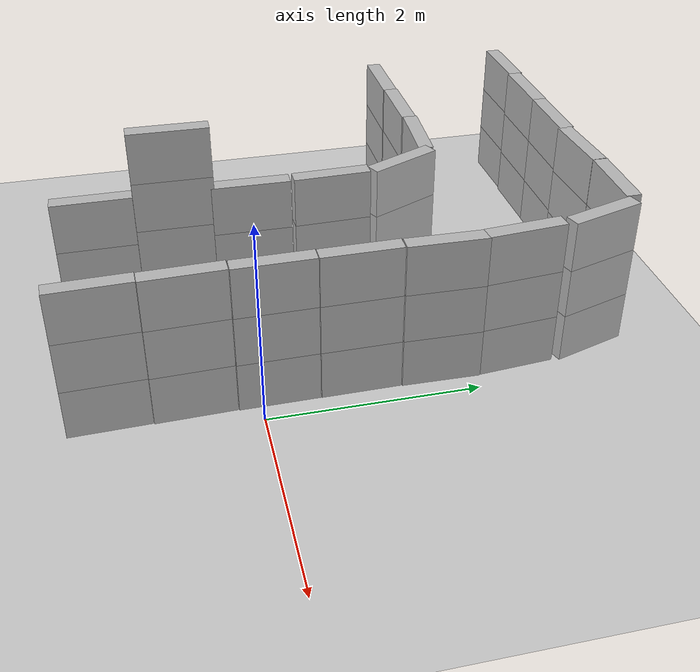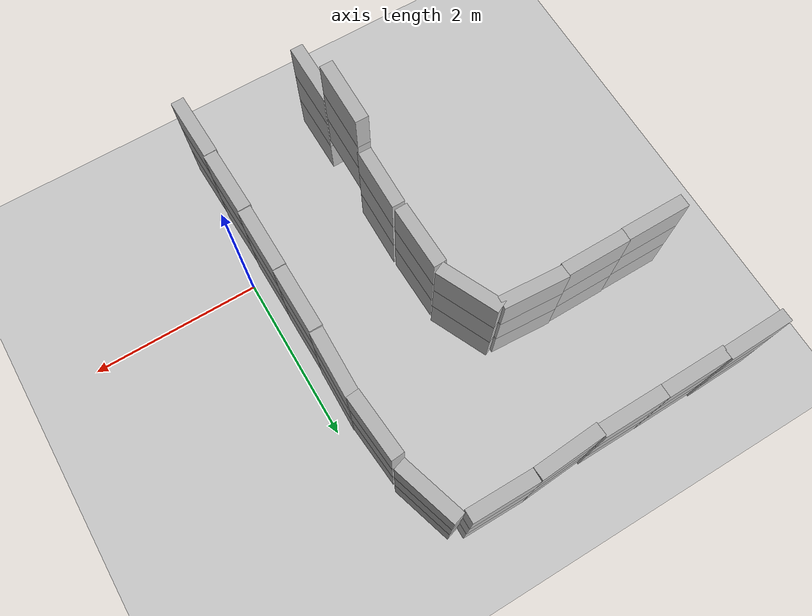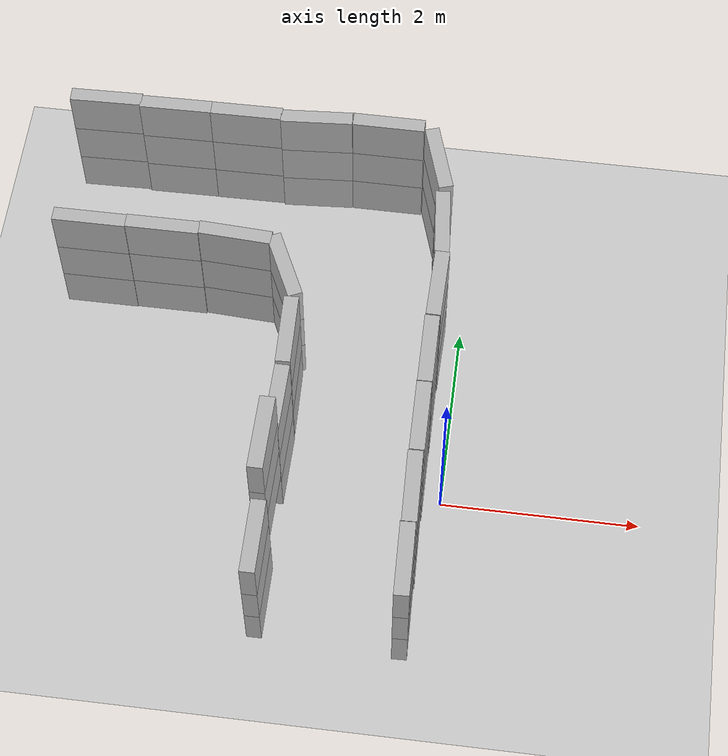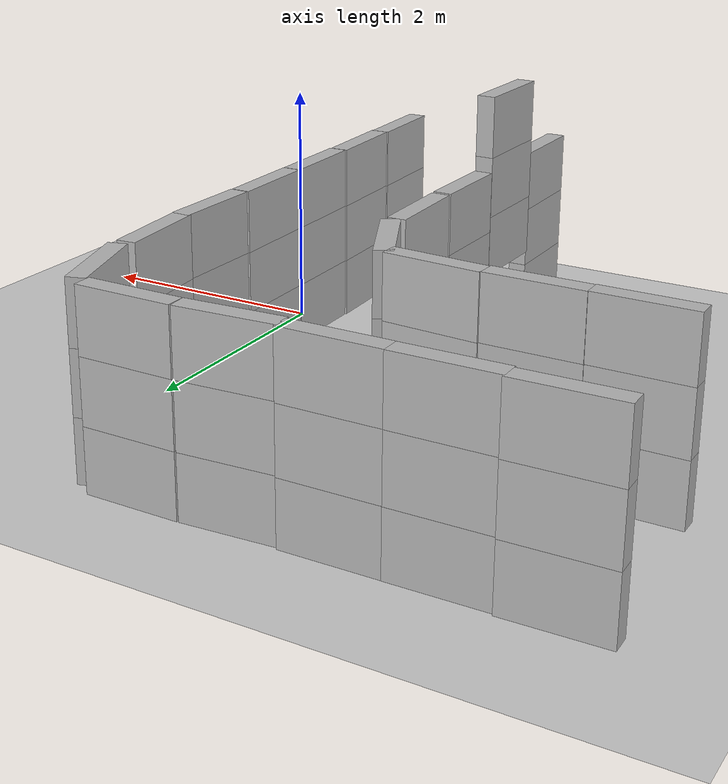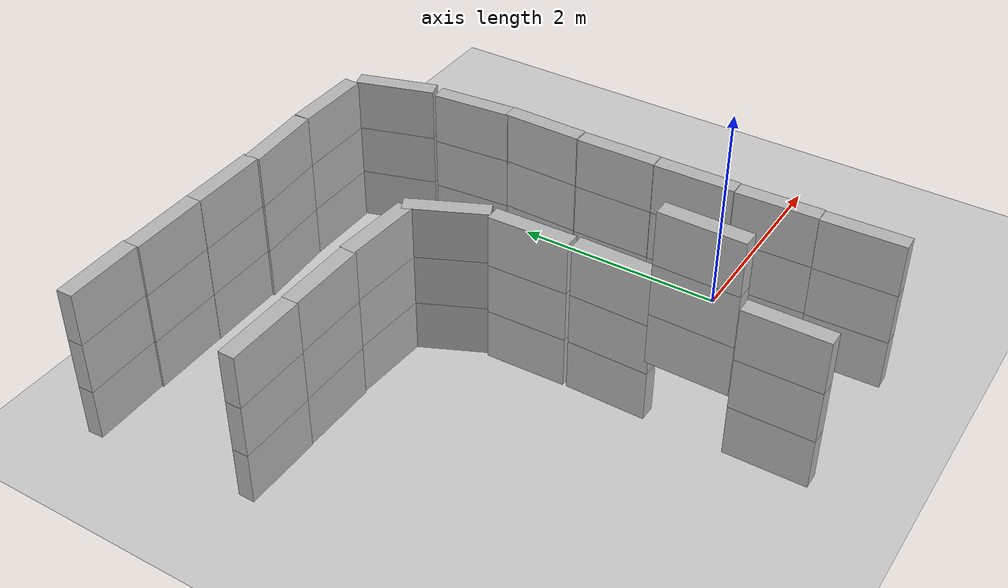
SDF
<sdf version="1.6">
 <world name="default">
  <light name="sun" type="directional">
   <pose>0 0 10 0 -0 0</pose>
   <diffuse>0.8 0.8 0.8 1</diffuse>
   <specular>0.2 0.2 0.2 1</specular>
   <attenuation>
    <range>1000</range>
    <constant>0.9</constant>
    <linear>0.01</linear>
    <quadratic>0.001</quadratic>
   </attenuation>
   <direction>-0.5 0.1 -0.9</direction>
  </light>
  <model name="ground_plane">
   <static>1</static>
   <link name="link">
    <collision name="collision">
     <geometry><plane><normal>0 0 1</normal><size>100 100</size></plane></geometry>
     <surface>
      <contact><collide_bitmask>65535</collide_bitmask></contact>
      <friction><ode><mu>100</mu><mu2>50</mu2></ode></friction>
     </surface>
    </collision>
    <visual name="visual">
     <cast_shadows>0</cast_shadows>
     <geometry><plane><normal>0 0 1</normal><size>100 100</size></plane></geometry>
     <material>
      <script><uri>file://media/materials/scripts/gazebo.material</uri><name>Gazebo/Grey</name></script>
     </material>
    </visual>
   </link>
  </model>
  <gravity>0 0 -9.8</gravity>
  <magnetic_field>6e-06 2.3e-05 -4.2e-05</magnetic_field>
  <atmosphere type="adiabatic"/>
  <physics name="default_physics" default="0" type="ode">
   <max_step_size>0.001</max_step_size>
   <real_time_factor>1</real_time_factor>
   <real_time_update_rate>1000</real_time_update_rate>
  </physics>
  <scene><ambient>0.4 0.4 0.4 1</ambient><background>0.7 0.7 0.7 1</background><shadows>1</shadows></scene>
  <audio><device>default</device></audio>
  <spherical_coordinates>
   <surface_model>EARTH_WGS84</surface_model>
   <latitude_deg>0</latitude_deg>
   <longitude_deg>0</longitude_deg>
   <elevation>0</elevation>
   <heading_deg>0</heading_deg>
  </spherical_coordinates>
  <model name="boxes_1">
   <pose>-1.65191 -1.28239 0 0 -0 0.002537</pose>
   <static>1</static>
   <link name="link_0">
    <collision name="collision_0">
     <pose>0 0 1.25 0 -0 1.5708</pose>
     <geometry><box><size>0.75 0.15 0.5</size></box></geometry>
    </collision>
    <visual name="visual_0">
     <pose>0 0 1.25 0 -0 1.5708</pose>
     <geometry><mesh><uri>model://boxes_1/meshes/blue_circle_border.dae</uri></mesh></geometry>
    </visual>
   </link>
   <link name="link_1">
    <collision name="collision_1">
     <pose>0 0 0.75 0 -0 1.5708</pose>
     <geometry><box><size>0.75 0.15 0.5</size></box></geometry>
    </collision>
    <visual name="visual_1">
     <pose>0 0 0.75 0 -0 1.5708</pose>
     <geometry><mesh><uri>model://boxes_1/meshes/red_circle_border.dae</uri></mesh></geometry>
    </visual>
   </link>
   <link name="link_2">
    <collision name="collision_2">
     <pose>0 0 0.25 0 -0 1.5708</pose>
     <geometry><box><size>0.75 0.15 0.5</size></box></geometry>
    </collision>
    <visual name="visual_2">
     <pose>0 0 0.25 0 -0 1.5708</pose>
     <geometry><mesh><uri>model://boxes_1/meshes/green_circle_border.dae</uri></mesh></geometry>
    </visual>
   </link>
  </model>
  <model name="boxes_2">
   <pose>-1.65884 -0.530511 0.624703 0 0 -0.01292</pose>
   <static>1</static>
   <link name="link_0">
    <collision name="collision_0">
     <pose>0 0 0.25 0 -0 1.5708</pose>
     <geometry><box><size>0.75 0.15 0.5</size></box></geometry>
    </collision>
    <visual name="visual_0">
     <pose>0 0 0.25 0 -0 1.5708</pose>
     <geometry><mesh><uri>model://boxes_2/meshes/blue_circle_border.dae</uri></mesh></geometry>
    </visual>
   </link>
   <link name="link_1">
    <collision name="collision_1">
     <pose>0 0 1.25 0 -0 1.5708</pose>
     <geometry><box><size>0.75 0.15 0.5</size></box></geometry>
    </collision>
    <visual name="visual_1">
     <pose>0 0 1.25 0 -0 1.5708</pose>
     <geometry><mesh><uri>model://boxes_2/meshes/red_circle_border.dae</uri></mesh></geometry>
    </visual>
   </link>
   <link name="link_2">
    <collision name="collision_2">
     <pose>0 0 0.75 0 -0 1.5708</pose>
     <geometry><box><size>0.75 0.15 0.5</size></box></geometry>
    </collision>
    <visual name="visual_2">
     <pose>0 0 0.75 0 -0 1.5708</pose>
     <geometry><mesh><uri>model://boxes_2/meshes/green_circle_border.dae</uri></mesh></geometry>
    </visual>
   </link>
  </model>
  <model name="boxes_3">
   <pose>-1.64812 0.189342 0 0 0 -0.013649</pose>
   <static>1</static>
   <link name="link_0">
    <collision name="collision_0">
     <pose>0 0 0.75 0 -0 1.5708</pose>
     <geometry><box><size>0.75 0.15 0.5</size></box></geometry>
    </collision>
    <visual name="visual_0">
     <pose>0 0 0.75 0 -0 1.5708</pose>
     <geometry><mesh><uri>model://boxes_3/meshes/blue_circle_border.dae</uri></mesh></geometry>
    </visual>
   </link>
   <link name="link_1">
    <collision name="collision_1">
     <pose>0 0 0.25 0 -0 1.5708</pose>
     <geometry><box><size>0.75 0.15 0.5</size></box></geometry>
    </collision>
    <visual name="visual_1">
     <pose>0 0 0.25 0 -0 1.5708</pose>
     <geometry><mesh><uri>model://boxes_3/meshes/red_circle_border.dae</uri></mesh></geometry>
    </visual>
   </link>
   <link name="link_2">
    <collision name="collision_2">
     <pose>0 0 1.25 0 -0 1.5708</pose>
     <geometry><box><size>0.75 0.15 0.5</size></box></geometry>
    </collision>
    <visual name="visual_2">
     <pose>0 0 1.25 0 -0 1.5708</pose>
     <geometry><mesh><uri>model://boxes_3/meshes/green_circle_border.dae</uri></mesh></geometry>
    </visual>
   </link>
  </model>
  <model name="boxes_1_0">
   <pose>-1.65694 0.972636 0 0 -0 0.026188</pose>
   <static>1</static>
   <link name="link_0">
    <collision name="collision_0">
     <pose>0 0 1.25 0 -0 1.5708</pose>
     <geometry><box><size>0.75 0.15 0.5</size></box></geometry>
    </collision>
    <visual name="visual_0">
     <pose>0 0 1.25 0 -0 1.5708</pose>
     <geometry><mesh><uri>model://boxes_1/meshes/blue_circle_border.dae</uri></mesh></geometry>
    </visual>
   </link>
   <link name="link_1">
    <collision name="collision_1">
     <pose>0 0 0.75 0 -0 1.5708</pose>
     <geometry><box><size>0.75 0.15 0.5</size></box></geometry>
    </collision>
    <visual name="visual_1">
     <pose>0 0 0.75 0 -0 1.5708</pose>
     <geometry><mesh><uri>model://boxes_1/meshes/red_circle_border.dae</uri></mesh></geometry>
    </visual>
   </link>
   <link name="link_2">
    <collision name="collision_2">
     <pose>0 0 0.25 0 -0 1.5708</pose>
     <geometry><box><size>0.75 0.15 0.5</size></box></geometry>
    </collision>
    <visual name="visual_2">
     <pose>0 0 0.25 0 -0 1.5708</pose>
     <geometry><mesh><uri>model://boxes_1/meshes/green_circle_border.dae</uri></mesh></geometry>
    </visual>
   </link>
  </model>
  <model name="boxes_2_0">
   <pose>-1.79252 1.71316 0 0 -0 0.436057</pose>
   <static>1</static>
   <link name="link_0">
    <collision name="collision_0">
     <pose>0 0 0.25 0 -0 1.5708</pose>
     <geometry><box><size>0.75 0.15 0.5</size></box></geometry>
    </collision>
    <visual name="visual_0">
     <pose>0 0 0.25 0 -0 1.5708</pose>
     <geometry><mesh><uri>model://boxes_2/meshes/blue_circle_border.dae</uri></mesh></geometry>
    </visual>
   </link>
   <link name="link_1">
    <collision name="collision_1">
     <pose>0 0 1.25 0 -0 1.5708</pose>
     <geometry><box><size>0.75 0.15 0.5</size></box></geometry>
    </collision>
    <visual name="visual_1">
     <pose>0 0 1.25 0 -0 1.5708</pose>
     <geometry><mesh><uri>model://boxes_2/meshes/red_circle_border.dae</uri></mesh></geometry>
    </visual>
   </link>
   <link name="link_2">
    <collision name="collision_2">
     <pose>0 0 0.75 0 -0 1.5708</pose>
     <geometry><box><size>0.75 0.15 0.5</size></box></geometry>
    </collision>
    <visual name="visual_2">
     <pose>0 0 0.75 0 -0 1.5708</pose>
     <geometry><mesh><uri>model://boxes_2/meshes/green_circle_border.dae</uri></mesh></geometry>
    </visual>
   </link>
  </model>
  <model name="boxes_3_0">
   <pose>-2.34043 2.03381 0 0 -0 1.5116</pose>
   <static>1</static>
   <link name="link_0">
    <collision name="collision_0">
     <pose>0 0 0.75 0 -0 1.5708</pose>
     <geometry><box><size>0.75 0.15 0.5</size></box></geometry>
    </collision>
    <visual name="visual_0">
     <pose>0 0 0.75 0 -0 1.5708</pose>
     <geometry><mesh><uri>model://boxes_3/meshes/blue_circle_border.dae</uri></mesh></geometry>
    </visual>
   </link>
   <link name="link_1">
    <collision name="collision_1">
     <pose>0 0 0.25 0 -0 1.5708</pose>
     <geometry><box><size>0.75 0.15 0.5</size></box></geometry>
    </collision>
    <visual name="visual_1">
     <pose>0 0 0.25 0 -0 1.5708</pose>
     <geometry><mesh><uri>model://boxes_3/meshes/red_circle_border.dae</uri></mesh></geometry>
    </visual>
   </link>
   <link name="link_2">
    <collision name="collision_2">
     <pose>0 0 1.25 0 -0 1.5708</pose>
     <geometry><box><size>0.75 0.15 0.5</size></box></geometry>
    </collision>
    <visual name="visual_2">
     <pose>0 0 1.25 0 -0 1.5708</pose>
     <geometry><mesh><uri>model://boxes_3/meshes/green_circle_border.dae</uri></mesh></geometry>
    </visual>
   </link>
  </model>
  <model name="boxes_1_1">
   <pose>-3.08322 2.0433 0 0 -0 1.5708</pose>
   <static>1</static>
   <link name="link_0">
    <collision name="collision_0">
     <pose>0 0 1.25 0 -0 1.5708</pose>
     <geometry><box><size>0.75 0.15 0.5</size></box></geometry>
    </collision>
    <visual name="visual_0">
     <pose>0 0 1.25 0 -0 1.5708</pose>
     <geometry><mesh><uri>model://boxes_1/meshes/blue_circle_border.dae</uri></mesh></geometry>
    </visual>
   </link>
   <link name="link_1">
    <collision name="collision_1">
     <pose>0 0 0.75 0 -0 1.5708</pose>
     <geometry><box><size>0.75 0.15 0.5</size></box></geometry>
    </collision>
    <visual name="visual_1">
     <pose>0 0 0.75 0 -0 1.5708</pose>
     <geometry><mesh><uri>model://boxes_1/meshes/red_circle_border.dae</uri></mesh></geometry>
    </visual>
   </link>
   <link name="link_2">
    <collision name="collision_2">
     <pose>0 0 0.25 0 -0 1.5708</pose>
     <geometry><box><size>0.75 0.15 0.5</size></box></geometry>
    </collision>
    <visual name="visual_2">
     <pose>0 0 0.25 0 -0 1.5708</pose>
     <geometry><mesh><uri>model://boxes_1/meshes/green_circle_border.dae</uri></mesh></geometry>
    </visual>
   </link>
  </model>
  <model name="boxes_2_1">
   <pose>-3.82977 2.03662 0 0 -0 1.5708</pose>
   <static>1</static>
   <link name="link_0">
    <collision name="collision_0">
     <pose>0 0 0.25 0 -0 1.5708</pose>
     <geometry><box><size>0.75 0.15 0.5</size></box></geometry>
    </collision>
    <visual name="visual_0">
     <pose>0 0 0.25 0 -0 1.5708</pose>
     <geometry><mesh><uri>model://boxes_2/meshes/blue_circle_border.dae</uri></mesh></geometry>
    </visual>
   </link>
   <link name="link_1">
    <collision name="collision_1">
     <pose>0 0 1.25 0 -0 1.5708</pose>
     <geometry><box><size>0.75 0.15 0.5</size></box></geometry>
    </collision>
    <visual name="visual_1">
     <pose>0 0 1.25 0 -0 1.5708</pose>
     <geometry><mesh><uri>model://boxes_2/meshes/red_circle_border.dae</uri></mesh></geometry>
    </visual>
   </link>
   <link name="link_2">
    <collision name="collision_2">
     <pose>0 0 0.75 0 -0 1.5708</pose>
     <geometry><box><size>0.75 0.15 0.5</size></box></geometry>
    </collision>
    <visual name="visual_2">
     <pose>0 0 0.75 0 -0 1.5708</pose>
     <geometry><mesh><uri>model://boxes_2/meshes/green_circle_border.dae</uri></mesh></geometry>
    </visual>
   </link>
  </model>
  <model name="boxes_1_2">
   <pose>-0.234445 -1.33841 0 0 -0 -3.11131</pose>
   <static>1</static>
   <link name="link_0">
    <collision name="collision_0">
     <pose>0 0 1.25 0 -0 1.5708</pose>
     <geometry><box><size>0.75 0.15 0.5</size></box></geometry>
    </collision>
    <visual name="visual_0">
     <pose>0 0 1.25 0 -0 1.5708</pose>
     <geometry><mesh><uri>model://boxes_1/meshes/blue_circle_border.dae</uri></mesh></geometry>
    </visual>
   </link>
   <link name="link_1">
    <collision name="collision_1">
     <pose>0 0 0.75 0 -0 1.5708</pose>
     <geometry><box><size>0.75 0.15 0.5</size></box></geometry>
    </collision>
    <visual name="visual_1">
     <pose>0 0 0.75 0 -0 1.5708</pose>
     <geometry><mesh><uri>model://boxes_1/meshes/red_circle_border.dae</uri></mesh></geometry>
    </visual>
   </link>
   <link name="link_2">
    <collision name="collision_2">
     <pose>0 0 0.25 0 -0 1.5708</pose>
     <geometry><box><size>0.75 0.15 0.5</size></box></geometry>
    </collision>
    <visual name="visual_2">
     <pose>0 0 0.25 0 -0 1.5708</pose>
     <geometry><mesh><uri>model://boxes_1/meshes/green_circle_border.dae</uri></mesh></geometry>
    </visual>
   </link>
  </model>
  <model name="boxes_2_2">
   <pose>-0.24783 -0.584587 0 0 -0 -3.11151</pose>
   <static>1</static>
   <link name="link_0">
    <collision name="collision_0">
     <pose>0 0 0.25 0 -0 1.5708</pose>
     <geometry><box><size>0.75 0.15 0.5</size></box></geometry>
    </collision>
    <visual name="visual_0">
     <pose>0 0 0.25 0 -0 1.5708</pose>
     <geometry><mesh><uri>model://boxes_2/meshes/blue_circle_border.dae</uri></mesh></geometry>
    </visual>
   </link>
   <link name="link_1">
    <collision name="collision_1">
     <pose>0 0 1.25 0 -0 1.5708</pose>
     <geometry><box><size>0.75 0.15 0.5</size></box></geometry>
    </collision>
    <visual name="visual_1">
     <pose>0 0 1.25 0 -0 1.5708</pose>
     <geometry><mesh><uri>model://boxes_2/meshes/red_circle_border.dae</uri></mesh></geometry>
    </visual>
   </link>
   <link name="link_2">
    <collision name="collision_2">
     <pose>0 0 0.75 0 -0 1.5708</pose>
     <geometry><box><size>0.75 0.15 0.5</size></box></geometry>
    </collision>
    <visual name="visual_2">
     <pose>0 0 0.75 0 -0 1.5708</pose>
     <geometry><mesh><uri>model://boxes_2/meshes/green_circle_border.dae</uri></mesh></geometry>
    </visual>
   </link>
  </model>
  <model name="boxes_3_1">
   <pose>-0.254814 0.172431 0 0 -0 -3.13027</pose>
   <static>1</static>
   <link name="link_0">
    <collision name="collision_0">
     <pose>0 0 0.75 0 -0 1.5708</pose>
     <geometry><box><size>0.75 0.15 0.5</size></box></geometry>
    </collision>
    <visual name="visual_0">
     <pose>0 0 0.75 0 -0 1.5708</pose>
     <geometry><mesh><uri>model://boxes_3/meshes/blue_circle_border.dae</uri></mesh></geometry>
    </visual>
   </link>
   <link name="link_1">
    <collision name="collision_1">
     <pose>0 0 0.25 0 -0 1.5708</pose>
     <geometry><box><size>0.75 0.15 0.5</size></box></geometry>
    </collision>
    <visual name="visual_1">
     <pose>0 0 0.25 0 -0 1.5708</pose>
     <geometry><mesh><uri>model://boxes_3/meshes/red_circle_border.dae</uri></mesh></geometry>
    </visual>
   </link>
   <link name="link_2">
    <collision name="collision_2">
     <pose>0 0 1.25 0 -0 1.5708</pose>
     <geometry><box><size>0.75 0.15 0.5</size></box></geometry>
    </collision>
    <visual name="visual_2">
     <pose>0 0 1.25 0 -0 1.5708</pose>
     <geometry><mesh><uri>model://boxes_3/meshes/green_circle_border.dae</uri></mesh></geometry>
    </visual>
   </link>
  </model>
  <model name="boxes_1_3">
   <pose>-0.25912 0.927731 0 0 -0 -3.13272</pose>
   <static>1</static>
   <link name="link_0">
    <collision name="collision_0">
     <pose>0 0 1.25 0 -0 1.5708</pose>
     <geometry><box><size>0.75 0.15 0.5</size></box></geometry>
    </collision>
    <visual name="visual_0">
     <pose>0 0 1.25 0 -0 1.5708</pose>
     <geometry><mesh><uri>model://boxes_1/meshes/blue_circle_border.dae</uri></mesh></geometry>
    </visual>
   </link>
   <link name="link_1">
    <collision name="collision_1">
     <pose>0 0 0.75 0 -0 1.5708</pose>
     <geometry><box><size>0.75 0.15 0.5</size></box></geometry>
    </collision>
    <visual name="visual_1">
     <pose>0 0 0.75 0 -0 1.5708</pose>
     <geometry><mesh><uri>model://boxes_1/meshes/red_circle_border.dae</uri></mesh></geometry>
    </visual>
   </link>
   <link name="link_2">
    <collision name="collision_2">
     <pose>0 0 0.25 0 -0 1.5708</pose>
     <geometry><box><size>0.75 0.15 0.5</size></box></geometry>
    </collision>
    <visual name="visual_2">
     <pose>0 0 0.25 0 -0 1.5708</pose>
     <geometry><mesh><uri>model://boxes_1/meshes/green_circle_border.dae</uri></mesh></geometry>
    </visual>
   </link>
  </model>
  <model name="boxes_2_3">
   <pose>-0.248889 1.6871 0 0 -0 3.12304</pose>
   <static>1</static>
   <link name="link_0">
    <collision name="collision_0">
     <pose>0 0 0.25 0 -0 1.5708</pose>
     <geometry><box><size>0.75 0.15 0.5</size></box></geometry>
    </collision>
    <visual name="visual_0">
     <pose>0 0 0.25 0 -0 1.5708</pose>
     <geometry><mesh><uri>model://boxes_2/meshes/blue_circle_border.dae</uri></mesh></geometry>
    </visual>
   </link>
   <link name="link_1">
    <collision name="collision_1">
     <pose>0 0 1.25 0 -0 1.5708</pose>
     <geometry><box><size>0.75 0.15 0.5</size></box></geometry>
    </collision>
    <visual name="visual_1">
     <pose>0 0 1.25 0 -0 1.5708</pose>
     <geometry><mesh><uri>model://boxes_2/meshes/red_circle_border.dae</uri></mesh></geometry>
    </visual>
   </link>
   <link name="link_2">
    <collision name="collision_2">
     <pose>0 0 0.75 0 -0 1.5708</pose>
     <geometry><box><size>0.75 0.15 0.5</size></box></geometry>
    </collision>
    <visual name="visual_2">
     <pose>0 0 0.75 0 -0 1.5708</pose>
     <geometry><mesh><uri>model://boxes_2/meshes/green_circle_border.dae</uri></mesh></geometry>
    </visual>
   </link>
  </model>
  <model name="boxes_3_2">
   <pose>-0.280245 2.42055 0 0 -0 -3.05467</pose>
   <static>1</static>
   <link name="link_0">
    <collision name="collision_0">
     <pose>0 0 0.75 0 -0 1.5708</pose>
     <geometry><box><size>0.75 0.15 0.5</size></box></geometry>
    </collision>
    <visual name="visual_0">
     <pose>0 0 0.75 0 -0 1.5708</pose>
     <geometry><mesh><uri>model://boxes_3/meshes/blue_circle_border.dae</uri></mesh></geometry>
    </visual>
   </link>
   <link name="link_1">
    <collision name="collision_1">
     <pose>0 0 0.25 0 -0 1.5708</pose>
     <geometry><box><size>0.75 0.15 0.5</size></box></geometry>
    </collision>
    <visual name="visual_1">
     <pose>0 0 0.25 0 -0 1.5708</pose>
     <geometry><mesh><uri>model://boxes_3/meshes/red_circle_border.dae</uri></mesh></geometry>
    </visual>
   </link>
   <link name="link_2">
    <collision name="collision_2">
     <pose>0 0 1.25 0 -0 1.5708</pose>
     <geometry><box><size>0.75 0.15 0.5</size></box></geometry>
    </collision>
    <visual name="visual_2">
     <pose>0 0 1.25 0 -0 1.5708</pose>
     <geometry><mesh><uri>model://boxes_3/meshes/green_circle_border.dae</uri></mesh></geometry>
    </visual>
   </link>
  </model>
  <model name="boxes_1_4">
   <pose>-0.400105 3.21059 0 0 -0 -2.84198</pose>
   <static>1</static>
   <link name="link_0">
    <collision name="collision_0">
     <pose>0 0 1.25 0 -0 1.5708</pose>
     <geometry><box><size>0.75 0.15 0.5</size></box></geometry>
    </collision>
    <visual name="visual_0">
     <pose>0 0 1.25 0 -0 1.5708</pose>
     <geometry><mesh><uri>model://boxes_1/meshes/blue_circle_border.dae</uri></mesh></geometry>
    </visual>
   </link>
   <link name="link_1">
    <collision name="collision_1">
     <pose>0 0 0.75 0 -0 1.5708</pose>
     <geometry><box><size>0.75 0.15 0.5</size></box></geometry>
    </collision>
    <visual name="visual_1">
     <pose>0 0 0.75 0 -0 1.5708</pose>
     <geometry><mesh><uri>model://boxes_1/meshes/red_circle_border.dae</uri></mesh></geometry>
    </visual>
   </link>
   <link name="link_2">
    <collision name="collision_2">
     <pose>0 0 0.25 0 -0 1.5708</pose>
     <geometry><box><size>0.75 0.15 0.5</size></box></geometry>
    </collision>
    <visual name="visual_2">
     <pose>0 0 0.25 0 -0 1.5708</pose>
     <geometry><mesh><uri>model://boxes_1/meshes/green_circle_border.dae</uri></mesh></geometry>
    </visual>
   </link>
  </model>
  <model name="boxes_2_4">
   <pose>-0.962753 3.5958 0 0 -0 -1.5751</pose>
   <static>1</static>
   <link name="link_0">
    <collision name="collision_0">
     <pose>0 0 0.25 0 -0 1.5708</pose>
     <geometry><box><size>0.75 0.15 0.5</size></box></geometry>
    </collision>
    <visual name="visual_0">
     <pose>0 0 0.25 0 -0 1.5708</pose>
     <geometry><mesh><uri>model://boxes_2/meshes/blue_circle_border.dae</uri></mesh></geometry>
    </visual>
   </link>
   <link name="link_1">
    <collision name="collision_1">
     <pose>0 0 1.25 0 -0 1.5708</pose>
     <geometry><box><size>0.75 0.15 0.5</size></box></geometry>
    </collision>
    <visual name="visual_1">
     <pose>0 0 1.25 0 -0 1.5708</pose>
     <geometry><mesh><uri>model://boxes_2/meshes/red_circle_border.dae</uri></mesh></geometry>
    </visual>
   </link>
   <link name="link_2">
    <collision name="collision_2">
     <pose>0 0 0.75 0 -0 1.5708</pose>
     <geometry><box><size>0.75 0.15 0.5</size></box></geometry>
    </collision>
    <visual name="visual_2">
     <pose>0 0 0.75 0 -0 1.5708</pose>
     <geometry><mesh><uri>model://boxes_2/meshes/green_circle_border.dae</uri></mesh></geometry>
    </visual>
   </link>
  </model>
  <model name="boxes_3_3">
   <pose>-1.71867 3.57187 0 0 0 -1.50648</pose>
   <static>1</static>
   <link name="link_0">
    <collision name="collision_0">
     <pose>0 0 0.75 0 -0 1.5708</pose>
     <geometry><box><size>0.75 0.15 0.5</size></box></geometry>
    </collision>
    <visual name="visual_0">
     <pose>0 0 0.75 0 -0 1.5708</pose>
     <geometry><mesh><uri>model://boxes_3/meshes/blue_circle_border.dae</uri></mesh></geometry>
    </visual>
   </link>
   <link name="link_1">
    <collision name="collision_1">
     <pose>0 0 0.25 0 -0 1.5708</pose>
     <geometry><box><size>0.75 0.15 0.5</size></box></geometry>
    </collision>
    <visual name="visual_1">
     <pose>0 0 0.25 0 -0 1.5708</pose>
     <geometry><mesh><uri>model://boxes_3/meshes/red_circle_border.dae</uri></mesh></geometry>
    </visual>
   </link>
   <link name="link_2">
    <collision name="collision_2">
     <pose>0 0 1.25 0 -0 1.5708</pose>
     <geometry><box><size>0.75 0.15 0.5</size></box></geometry>
    </collision>
    <visual name="visual_2">
     <pose>0 0 1.25 0 -0 1.5708</pose>
     <geometry><mesh><uri>model://boxes_3/meshes/green_circle_border.dae</uri></mesh></geometry>
    </visual>
   </link>
  </model>
  <model name="boxes_1_5">
   <pose>-2.45771 3.56455 0 0 0 -1.56304</pose>
   <static>1</static>
   <link name="link_0">
    <collision name="collision_0">
     <pose>0 0 1.25 0 -0 1.5708</pose>
     <geometry><box><size>0.75 0.15 0.5</size></box></geometry>
    </collision>
    <visual name="visual_0">
     <pose>0 0 1.25 0 -0 1.5708</pose>
     <geometry><mesh><uri>model://boxes_1/meshes/blue_circle_border.dae</uri></mesh></geometry>
    </visual>
   </link>
   <link name="link_1">
    <collision name="collision_1">
     <pose>0 0 0.75 0 -0 1.5708</pose>
     <geometry><box><size>0.75 0.15 0.5</size></box></geometry>
    </collision>
    <visual name="visual_1">
     <pose>0 0 0.75 0 -0 1.5708</pose>
     <geometry><mesh><uri>model://boxes_1/meshes/red_circle_border.dae</uri></mesh></geometry>
    </visual>
   </link>
   <link name="link_2">
    <collision name="collision_2">
     <pose>0 0 0.25 0 -0 1.5708</pose>
     <geometry><box><size>0.75 0.15 0.5</size></box></geometry>
    </collision>
    <visual name="visual_2">
     <pose>0 0 0.25 0 -0 1.5708</pose>
     <geometry><mesh><uri>model://boxes_1/meshes/green_circle_border.dae</uri></mesh></geometry>
    </visual>
   </link>
  </model>
  <model name="boxes_2_5">
   <pose>-3.20441 3.55924 0 0 0 -1.55841</pose>
   <static>1</static>
   <link name="link_0">
    <collision name="collision_0">
     <pose>0 0 0.25 0 -0 1.5708</pose>
     <geometry><box><size>0.75 0.15 0.5</size></box></geometry>
    </collision>
    <visual name="visual_0">
     <pose>0 0 0.25 0 -0 1.5708</pose>
     <geometry><mesh><uri>model://boxes_2/meshes/blue_circle_border.dae</uri></mesh></geometry>
    </visual>
   </link>
   <link name="link_1">
    <collision name="collision_1">
     <pose>0 0 1.25 0 -0 1.5708</pose>
     <geometry><box><size>0.75 0.15 0.5</size></box></geometry>
    </collision>
    <visual name="visual_1">
     <pose>0 0 1.25 0 -0 1.5708</pose>
     <geometry><mesh><uri>model://boxes_2/meshes/red_circle_border.dae</uri></mesh></geometry>
    </visual>
   </link>
   <link name="link_2">
    <collision name="collision_2">
     <pose>0 0 0.75 0 -0 1.5708</pose>
     <geometry><box><size>0.75 0.15 0.5</size></box></geometry>
    </collision>
    <visual name="visual_2">
     <pose>0 0 0.75 0 -0 1.5708</pose>
     <geometry><mesh><uri>model://boxes_2/meshes/green_circle_border.dae</uri></mesh></geometry>
    </visual>
   </link>
  </model>
  <model name="boxes_3_4">
   <pose>-3.94406 3.564 0 0 0 -1.54925</pose>
   <static>1</static>
   <link name="link_0">
    <collision name="collision_0">
     <pose>0 0 0.75 0 -0 1.5708</pose>
     <geometry><box><size>0.75 0.15 0.5</size></box></geometry>
    </collision>
    <visual name="visual_0">
     <pose>0 0 0.75 0 -0 1.5708</pose>
     <geometry><mesh><uri>model://boxes_3/meshes/blue_circle_border.dae</uri></mesh></geometry>
    </visual>
   </link>
   <link name="link_1">
    <collision name="collision_1">
     <pose>0 0 0.25 0 -0 1.5708</pose>
     <geometry><box><size>0.75 0.15 0.5</size></box></geometry>
    </collision>
    <visual name="visual_1">
     <pose>0 0 0.25 0 -0 1.5708</pose>
     <geometry><mesh><uri>model://boxes_3/meshes/red_circle_border.dae</uri></mesh></geometry>
    </visual>
   </link>
   <link name="link_2">
    <collision name="collision_2">
     <pose>0 0 1.25 0 -0 1.5708</pose>
     <geometry><box><size>0.75 0.15 0.5</size></box></geometry>
    </collision>
    <visual name="visual_2">
     <pose>0 0 1.25 0 -0 1.5708</pose>
     <geometry><mesh><uri>model://boxes_3/meshes/green_circle_border.dae</uri></mesh></geometry>
    </visual>
   </link>
  </model>
 </world>
</sdf>
